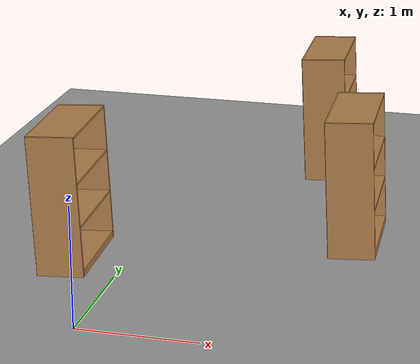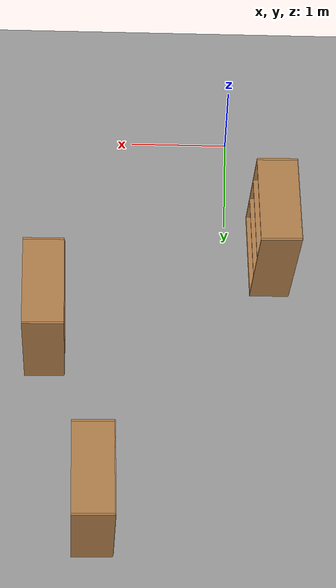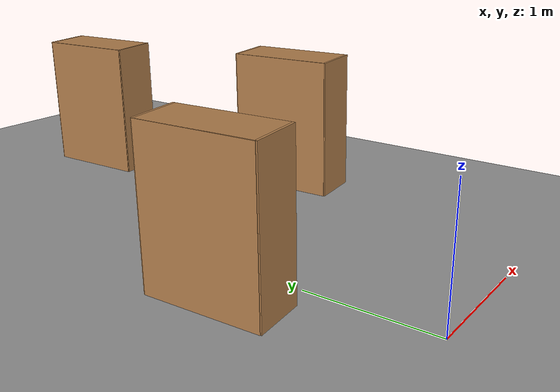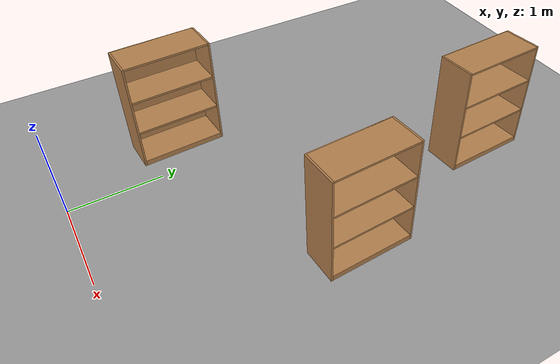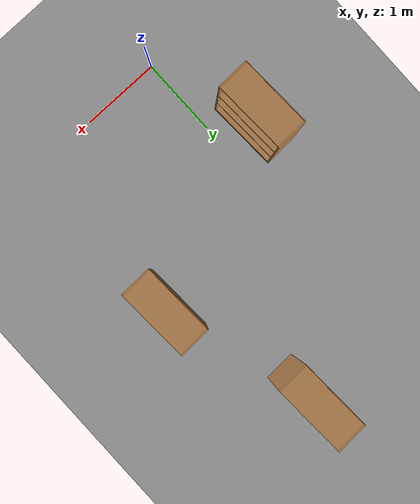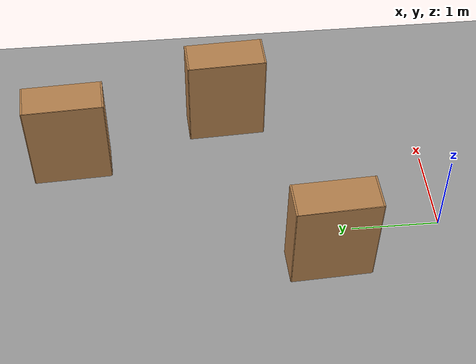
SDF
<sdf version="1.6">
 <world name="default">
  <light name="sun" type="directional">
   <cast_shadows>0</cast_shadows>
   <pose>0 0 10 0 -0 0</pose>
   <diffuse>0.8 0.8 0.8 1</diffuse>
   <specular>0.2 0.2 0.2 1</specular>
   <attenuation>
    <range>1000</range>
    <constant>0.9</constant>
    <linear>0.01</linear>
    <quadratic>0.001</quadratic>
   </attenuation>
   <direction>0.5 0.1 -0.9</direction>
  </light>
  <scene><ambient>0.4 0.4 0.4 1</ambient><background>0.7 0.7 0.7 1</background><shadows>0</shadows></scene>
  <physics name="default_physics" default="0" type="ode">
   <max_step_size>0.01</max_step_size>
   <real_time_factor>1</real_time_factor>
   <real_time_update_rate>100</real_time_update_rate>
  </physics>
  <model name="bookshelf">
   <static>1</static>
   <link name="link">
    <inertial><mass>1</mass></inertial>
    <collision name="back">
     <pose>0 0.005 0.6 0 -0 0</pose>
     <geometry><box><size>0.9 0.01 1.2</size></box></geometry>
    </collision>
    <visual name="visual1">
     <pose>0 0.005 0.6 0 -0 0</pose>
     <geometry><box><size>0.9 0.01 1.2</size></box></geometry>
     <material>
      <script><uri>file://media/materials/scripts/gazebo.material</uri><name>Gazebo/Wood</name></script>
     </material>
    </visual>
    <collision name="left_side">
     <pose>0.45 -0.195 0.6 0 -0 0</pose>
     <geometry><box><size>0.02 0.4 1.2</size></box></geometry>
    </collision>
    <visual name="visual2">
     <pose>0.45 -0.195 0.6 0 -0 0</pose>
     <geometry><box><size>0.02 0.4 1.2</size></box></geometry>
     <material>
      <script><uri>file://media/materials/scripts/gazebo.material</uri><name>Gazebo/Wood</name></script>
     </material>
    </visual>
    <collision name="right_side">
     <pose>-0.45 -0.195 0.6 0 -0 0</pose>
     <geometry><box><size>0.02 0.4 1.2</size></box></geometry>
    </collision>
    <visual name="visual3">
     <pose>-0.45 -0.195 0.6 0 -0 0</pose>
     <geometry><box><size>0.02 0.4 1.2</size></box></geometry>
     <material>
      <script><uri>file://media/materials/scripts/gazebo.material</uri><name>Gazebo/Wood</name></script>
     </material>
    </visual>
    <collision name="bottom">
     <pose>0 -0.195 0.03 0 -0 0</pose>
     <geometry><box><size>0.88 0.4 0.06</size></box></geometry>
    </collision>
    <visual name="visual4">
     <pose>0 -0.195 0.03 0 -0 0</pose>
     <geometry><box><size>0.88 0.4 0.06</size></box></geometry>
     <material>
      <script><uri>file://media/materials/scripts/gazebo.material</uri><name>Gazebo/Wood</name></script>
     </material>
    </visual>
    <collision name="top">
     <pose>0 -0.195 1.19 0 -0 0</pose>
     <geometry><box><size>0.88 0.4 0.02</size></box></geometry>
    </collision>
    <visual name="visual5">
     <pose>0 -0.195 1.19 0 -0 0</pose>
     <geometry><box><size>0.88 0.4 0.02</size></box></geometry>
     <material>
      <script><uri>file://media/materials/scripts/gazebo.material</uri><name>Gazebo/Wood</name></script>
     </material>
    </visual>
    <collision name="low_shelf">
     <pose>0 -0.195 0.43 0 -0 0</pose>
     <geometry><box><size>0.88 0.4 0.02</size></box></geometry>
    </collision>
    <visual name="visual6">
     <pose>0 -0.195 0.43 0 -0 0</pose>
     <geometry><box><size>0.88 0.4 0.02</size></box></geometry>
     <material>
      <script><uri>file://media/materials/scripts/gazebo.material</uri><name>Gazebo/Wood</name></script>
     </material>
    </visual>
    <collision name="high_shelf">
     <pose>0 -0.195 0.8 0 -0 0</pose>
     <geometry><box><size>0.88 0.4 0.02</size></box></geometry>
    </collision>
    <visual name="visual7">
     <pose>0 -0.195 0.8 0 -0 0</pose>
     <geometry><box><size>0.88 0.4 0.02</size></box></geometry>
     <material>
      <script><uri>file://media/materials/scripts/gazebo.material</uri><name>Gazebo/Wood</name></script>
     </material>
    </visual>
    <velocity_decay><linear>0</linear><angular>0</angular></velocity_decay>
   </link>
   <pose>-0.638955 1.3344 0 -0.048058 0.002164 1.61576</pose>
  </model>
  <model name="ground_plane_0">
   <static>1</static>
   <link name="link">
    <collision name="collision">
     <geometry><plane><normal>0 0 1</normal><size>100 100</size></plane></geometry>
     <surface><friction><ode><mu>100</mu><mu2>50</mu2></ode></friction></surface>
    </collision>
    <visual name="visual">
     <cast_shadows>0</cast_shadows>
     <geometry><plane><normal>0 0 1</normal><size>100 100</size></plane></geometry>
     <material>
      <script><uri>file://media/materials/scripts/gazebo.material</uri><name>Gazebo/Grey</name></script>
     </material>
    </visual>
    <velocity_decay><linear>0</linear><angular>0</angular></velocity_decay>
   </link>
   <pose>0.497681 0 0 0 -0 0</pose>
  </model>
  <gravity>0 0 -9.8</gravity>
  <magnetic_field>6e-06 2.3e-05 -4.2e-05</magnetic_field>
  <atmosphere type="adiabatic"/>
  <spherical_coordinates>
   <surface_model>EARTH_WGS84</surface_model>
   <latitude_deg>0</latitude_deg>
   <longitude_deg>0</longitude_deg>
   <elevation>0</elevation>
   <heading_deg>0</heading_deg>
  </spherical_coordinates>
  <model name="bookshelf_clone">
   <static>1</static>
   <link name="link">
    <inertial><mass>1</mass></inertial>
    <collision name="back">
     <pose>0 0.005 0.6 0 -0 0</pose>
     <geometry><box><size>0.9 0.01 1.2</size></box></geometry>
    </collision>
    <visual name="visual1">
     <pose>0 0.005 0.6 0 -0 0</pose>
     <geometry><box><size>0.9 0.01 1.2</size></box></geometry>
     <material>
      <script><uri>file://media/materials/scripts/gazebo.material</uri><name>Gazebo/Wood</name></script>
     </material>
    </visual>
    <collision name="left_side">
     <pose>0.45 -0.195 0.6 0 -0 0</pose>
     <geometry><box><size>0.02 0.4 1.2</size></box></geometry>
    </collision>
    <visual name="visual2">
     <pose>0.45 -0.195 0.6 0 -0 0</pose>
     <geometry><box><size>0.02 0.4 1.2</size></box></geometry>
     <material>
      <script><uri>file://media/materials/scripts/gazebo.material</uri><name>Gazebo/Wood</name></script>
     </material>
    </visual>
    <collision name="right_side">
     <pose>-0.45 -0.195 0.6 0 -0 0</pose>
     <geometry><box><size>0.02 0.4 1.2</size></box></geometry>
    </collision>
    <visual name="visual3">
     <pose>-0.45 -0.195 0.6 0 -0 0</pose>
     <geometry><box><size>0.02 0.4 1.2</size></box></geometry>
     <material>
      <script><uri>file://media/materials/scripts/gazebo.material</uri><name>Gazebo/Wood</name></script>
     </material>
    </visual>
    <collision name="bottom">
     <pose>0 -0.195 0.03 0 -0 0</pose>
     <geometry><box><size>0.88 0.4 0.06</size></box></geometry>
    </collision>
    <visual name="visual4">
     <pose>0 -0.195 0.03 0 -0 0</pose>
     <geometry><box><size>0.88 0.4 0.06</size></box></geometry>
     <material>
      <script><uri>file://media/materials/scripts/gazebo.material</uri><name>Gazebo/Wood</name></script>
     </material>
    </visual>
    <collision name="top">
     <pose>0 -0.195 1.19 0 -0 0</pose>
     <geometry><box><size>0.88 0.4 0.02</size></box></geometry>
    </collision>
    <visual name="visual5">
     <pose>0 -0.195 1.19 0 -0 0</pose>
     <geometry><box><size>0.88 0.4 0.02</size></box></geometry>
     <material>
      <script><uri>file://media/materials/scripts/gazebo.material</uri><name>Gazebo/Wood</name></script>
     </material>
    </visual>
    <collision name="low_shelf">
     <pose>0 -0.195 0.43 0 -0 0</pose>
     <geometry><box><size>0.88 0.4 0.02</size></box></geometry>
    </collision>
    <visual name="visual6">
     <pose>0 -0.195 0.43 0 -0 0</pose>
     <geometry><box><size>0.88 0.4 0.02</size></box></geometry>
     <material>
      <script><uri>file://media/materials/scripts/gazebo.material</uri><name>Gazebo/Wood</name></script>
     </material>
    </visual>
    <collision name="high_shelf">
     <pose>0 -0.195 0.8 0 -0 0</pose>
     <geometry><box><size>0.88 0.4 0.02</size></box></geometry>
    </collision>
    <visual name="visual7">
     <pose>0 -0.195 0.8 0 -0 0</pose>
     <geometry><box><size>0.88 0.4 0.02</size></box></geometry>
     <material>
      <script><uri>file://media/materials/scripts/gazebo.material</uri><name>Gazebo/Wood</name></script>
     </material>
    </visual>
    <velocity_decay><linear>0</linear><angular>0</angular></velocity_decay>
   </link>
   <pose>1.61496 2.28507 0 -0.048058 0.002164 1.61576</pose>
  </model>
  <model name="bookshelf_clone_0">
   <static>1</static>
   <link name="link">
    <inertial><mass>1</mass></inertial>
    <collision name="back">
     <pose>0 0.005 0.6 0 -0 0</pose>
     <geometry><box><size>0.9 0.01 1.2</size></box></geometry>
    </collision>
    <visual name="visual1">
     <pose>0 0.005 0.6 0 -0 0</pose>
     <geometry><box><size>0.9 0.01 1.2</size></box></geometry>
     <material>
      <script><uri>file://media/materials/scripts/gazebo.material</uri><name>Gazebo/Wood</name></script>
     </material>
    </visual>
    <collision name="left_side">
     <pose>0.45 -0.195 0.6 0 -0 0</pose>
     <geometry><box><size>0.02 0.4 1.2</size></box></geometry>
    </collision>
    <visual name="visual2">
     <pose>0.45 -0.195 0.6 0 -0 0</pose>
     <geometry><box><size>0.02 0.4 1.2</size></box></geometry>
     <material>
      <script><uri>file://media/materials/scripts/gazebo.material</uri><name>Gazebo/Wood</name></script>
     </material>
    </visual>
    <collision name="right_side">
     <pose>-0.45 -0.195 0.6 0 -0 0</pose>
     <geometry><box><size>0.02 0.4 1.2</size></box></geometry>
    </collision>
    <visual name="visual3">
     <pose>-0.45 -0.195 0.6 0 -0 0</pose>
     <geometry><box><size>0.02 0.4 1.2</size></box></geometry>
     <material>
      <script><uri>file://media/materials/scripts/gazebo.material</uri><name>Gazebo/Wood</name></script>
     </material>
    </visual>
    <collision name="bottom">
     <pose>0 -0.195 0.03 0 -0 0</pose>
     <geometry><box><size>0.88 0.4 0.06</size></box></geometry>
    </collision>
    <visual name="visual4">
     <pose>0 -0.195 0.03 0 -0 0</pose>
     <geometry><box><size>0.88 0.4 0.06</size></box></geometry>
     <material>
      <script><uri>file://media/materials/scripts/gazebo.material</uri><name>Gazebo/Wood</name></script>
     </material>
    </visual>
    <collision name="top">
     <pose>0 -0.195 1.19 0 -0 0</pose>
     <geometry><box><size>0.88 0.4 0.02</size></box></geometry>
    </collision>
    <visual name="visual5">
     <pose>0 -0.195 1.19 0 -0 0</pose>
     <geometry><box><size>0.88 0.4 0.02</size></box></geometry>
     <material>
      <script><uri>file://media/materials/scripts/gazebo.material</uri><name>Gazebo/Wood</name></script>
     </material>
    </visual>
    <collision name="low_shelf">
     <pose>0 -0.195 0.43 0 -0 0</pose>
     <geometry><box><size>0.88 0.4 0.02</size></box></geometry>
    </collision>
    <visual name="visual6">
     <pose>0 -0.195 0.43 0 -0 0</pose>
     <geometry><box><size>0.88 0.4 0.02</size></box></geometry>
     <material>
      <script><uri>file://media/materials/scripts/gazebo.material</uri><name>Gazebo/Wood</name></script>
     </material>
    </visual>
    <collision name="high_shelf">
     <pose>0 -0.195 0.8 0 -0 0</pose>
     <geometry><box><size>0.88 0.4 0.02</size></box></geometry>
    </collision>
    <visual name="visual7">
     <pose>0 -0.195 0.8 0 -0 0</pose>
     <geometry><box><size>0.88 0.4 0.02</size></box></geometry>
     <material>
      <script><uri>file://media/materials/scripts/gazebo.material</uri><name>Gazebo/Wood</name></script>
     </material>
    </visual>
    <velocity_decay><linear>0</linear><angular>0</angular></velocity_decay>
   </link>
   <pose>1.0552 4.16427 0 -0.048058 0.002164 1.61576</pose>
  </model>
 </world>
</sdf>
